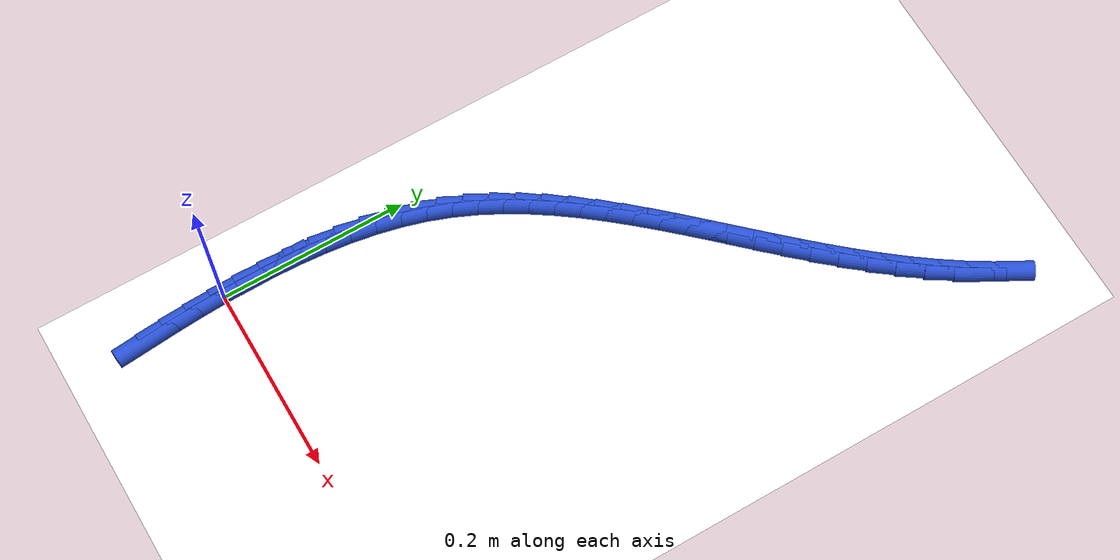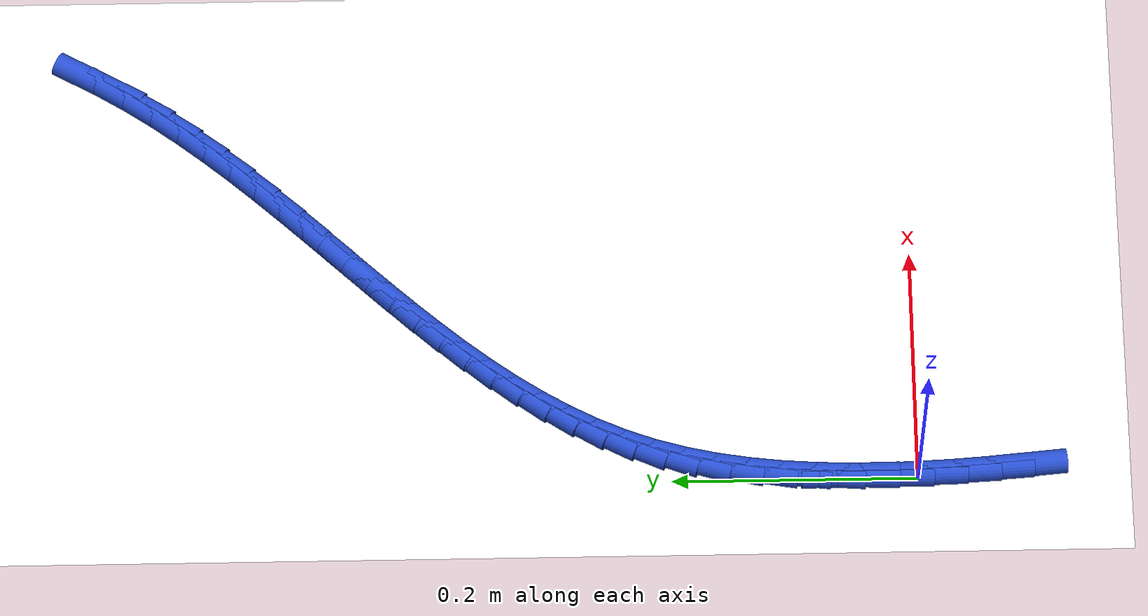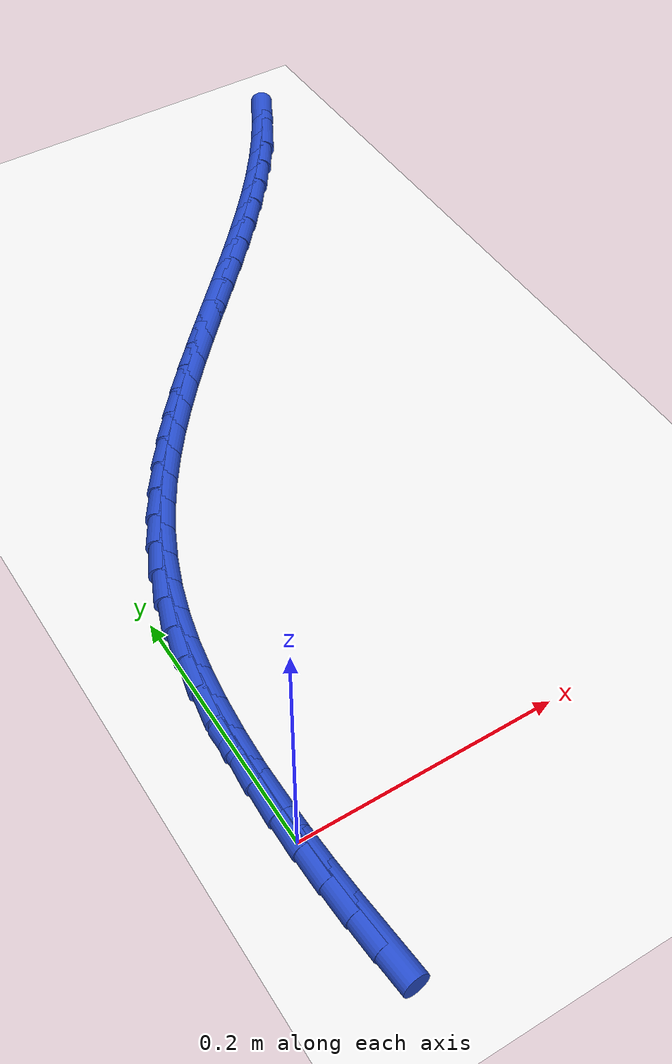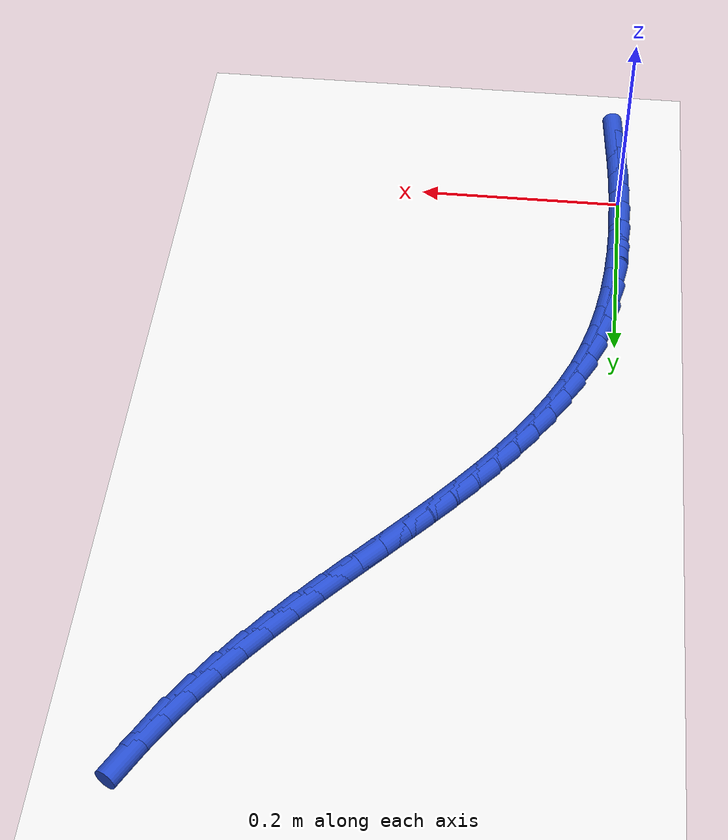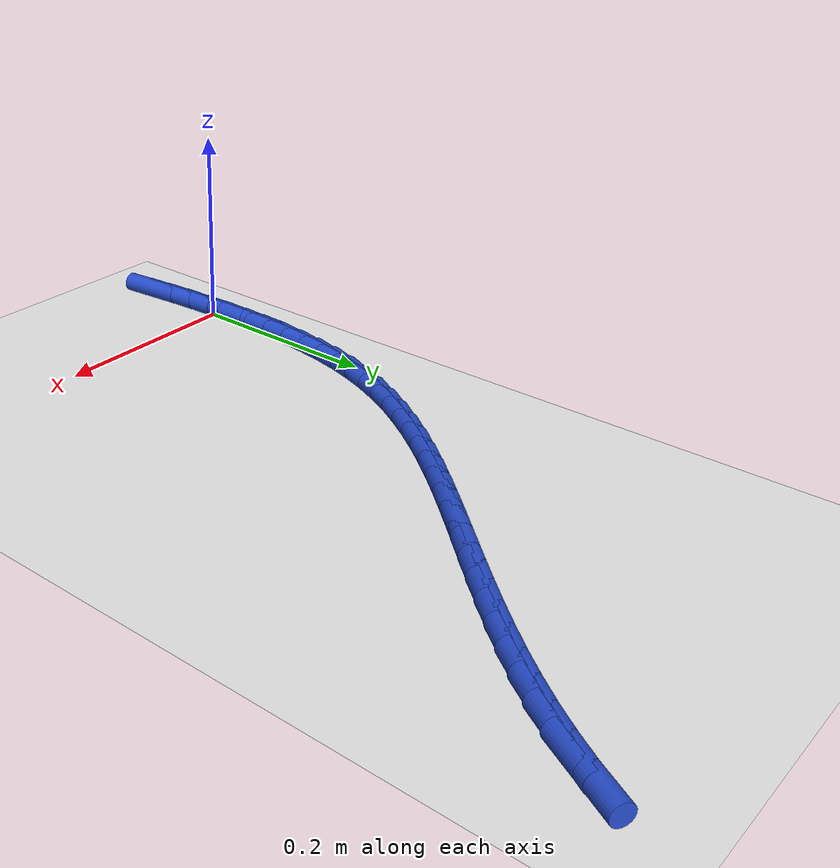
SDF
<sdf version="1.6">
 <world name="default">
  <model name="ground_plane">
   <static>1</static>
   <link name="link">
    <collision name="collision">
     <geometry><plane><normal>0 0 1</normal><size>100 100</size></plane></geometry>
     <surface><friction><ode><mu>100</mu><mu2>50</mu2></ode></friction></surface>
    </collision>
    <visual name="visual">
     <cast_shadows>0</cast_shadows>
     <geometry><plane><normal>0 0 1</normal><size>100 100</size></plane></geometry>
     <material>
      <script><uri>file://media/materials/scripts/gazebo.material</uri><name>Gazebo/WhiteGlow</name></script>
     </material>
    </visual>
   </link>
  </model>
  <model name="line">
   <link name="link_0">
    <pose>1.0842021724855044e-17 2.0816681711721685e-17 0.01 0 1.57 -1.5472267662601276</pose>
    <collision name="collision">
     <geometry><cylinder><radius>0.01</radius><length>0.08</length></cylinder></geometry>
    </collision>
    <visual name="visual">
     <material>
      <script><name>Gazebo/Blue</name><uri>file://media/materials/scripts/gazebo.material</uri></script>
     </material>
     <geometry><cylinder><radius>0.01</radius><length>0.08</length></cylinder></geometry>
    </visual>
   </link>
   <link name="link_1">
    <pose>-0.0006464769076090113 0.02742338751018824 0.01 0 1.57 1.5667101648497685</pose>
    <collision name="collision">
     <geometry><cylinder><radius>0.01</radius><length>0.08</length></cylinder></geometry>
    </collision>
    <visual name="visual">
     <material>
      <script><name>Gazebo/Blue</name><uri>file://media/materials/scripts/gazebo.material</uri></script>
     </material>
     <geometry><cylinder><radius>0.01</radius><length>0.08</length></cylinder></geometry>
    </visual>
   </link>
   <link name="link_2">
    <pose>-0.0005337902747085362 0.055000856843833955 0.01 0 1.57 1.5344572373062468</pose>
    <collision name="collision">
     <geometry><cylinder><radius>0.01</radius><length>0.08</length></cylinder></geometry>
    </collision>
    <visual name="visual">
     <material>
      <script><name>Gazebo/Blue</name><uri>file://media/materials/scripts/gazebo.material</uri></script>
     </material>
     <geometry><cylinder><radius>0.01</radius><length>0.08</length></cylinder></geometry>
    </visual>
   </link>
   <link name="link_3">
    <pose>0.00046877436438513354 0.08257786300912566 0.01 0 1.57 1.497151139455644</pose>
    <collision name="collision">
     <geometry><cylinder><radius>0.01</radius><length>0.08</length></cylinder></geometry>
    </collision>
    <visual name="visual">
     <material>
      <script><name>Gazebo/Blue</name><uri>file://media/materials/scripts/gazebo.material</uri></script>
     </material>
     <geometry><cylinder><radius>0.01</radius><length>0.08</length></cylinder></geometry>
    </visual>
   </link>
   <link name="link_4">
    <pose>0.0024919314753556903 0.10999986101425177 0.01 0 1.57 1.4542418787284923</pose>
    <collision name="collision">
     <geometry><cylinder><radius>0.01</radius><length>0.08</length></cylinder></geometry>
    </collision>
    <visual name="visual">
     <material>
      <script><name>Gazebo/Blue</name><uri>file://media/materials/scripts/gazebo.material</uri></script>
     </material>
     <geometry><cylinder><radius>0.01</radius><length>0.08</length></cylinder></geometry>
    </visual>
   </link>
   <link name="link_5">
    <pose>0.005666395523886836 0.13711230586740084 0.01 0 1.57 1.4050965822391075</pose>
    <collision name="collision">
     <geometry><cylinder><radius>0.01</radius><length>0.08</length></cylinder></geometry>
    </collision>
    <visual name="visual">
     <material>
      <script><name>Gazebo/Blue</name><uri>file://media/materials/scripts/gazebo.material</uri></script>
     </material>
     <geometry><cylinder><radius>0.01</radius><length>0.08</length></cylinder></geometry>
    </visual>
   </link>
   <link name="link_6">
    <pose>0.010122880975662265 0.16376065257676137 0.01 0 1.57 1.3490234607499503</pose>
    <collision name="collision">
     <geometry><cylinder><radius>0.01</radius><length>0.08</length></cylinder></geometry>
    </collision>
    <visual name="visual">
     <material>
      <script><name>Gazebo/Blue</name><uri>file://media/materials/scripts/gazebo.material</uri></script>
     </material>
     <geometry><cylinder><radius>0.01</radius><length>0.08</length></cylinder></geometry>
    </visual>
   </link>
   <link name="link_7">
    <pose>0.01599210229636567 0.18979035615052176 0.01 0 1.57 1.2853176665392432</pose>
    <collision name="collision">
     <geometry><cylinder><radius>0.01</radius><length>0.08</length></cylinder></geometry>
    </collision>
    <visual name="visual">
     <material>
      <script><name>Gazebo/Blue</name><uri>file://media/materials/scripts/gazebo.material</uri></script>
     </material>
     <geometry><cylinder><radius>0.01</radius><length>0.08</length></cylinder></geometry>
    </visual>
   </link>
   <link name="link_8">
    <pose>0.02340477395040744 0.21504687159804953 0.01 0 1.57 1.2154745744464812</pose>
    <collision name="collision">
     <geometry><cylinder><radius>0.01</radius><length>0.08</length></cylinder></geometry>
    </collision>
    <visual name="visual">
     <material>
      <script><name>Gazebo/Blue</name><uri>file://media/materials/scripts/gazebo.material</uri></script>
     </material>
     <geometry><cylinder><radius>0.01</radius><length>0.08</length></cylinder></geometry>
    </visual>
   </link>
   <link name="link_9">
    <pose>0.03244760337115915 0.23941640173348774 0.01 0 1.57 1.1480598412882907</pose>
    <collision name="collision">
     <geometry><cylinder><radius>0.01</radius><length>0.08</length></cylinder></geometry>
    </collision>
    <visual name="visual">
     <material>
      <script><name>Gazebo/Blue</name><uri>file://media/materials/scripts/gazebo.material</uri></script>
     </material>
     <geometry><cylinder><radius>0.01</radius><length>0.08</length></cylinder></geometry>
    </visual>
   </link>
   <link name="link_10">
    <pose>0.04303288856855014 0.2629466417727541 0.01 0 1.57 1.0860408025987376</pose>
    <collision name="collision">
     <geometry><cylinder><radius>0.01</radius><length>0.08</length></cylinder></geometry>
    </collision>
    <visual name="visual">
     <material>
      <script><name>Gazebo/Blue</name><uri>file://media/materials/scripts/gazebo.material</uri></script>
     </material>
     <geometry><cylinder><radius>0.01</radius><length>0.08</length></cylinder></geometry>
    </visual>
   </link>
   <link name="link_11">
    <pose>0.055029726157448035 0.28572528876716546 0.01 0 1.57 1.0300897375059677</pose>
    <collision name="collision">
     <geometry><cylinder><radius>0.01</radius><length>0.08</length></cylinder></geometry>
    </collision>
    <visual name="visual">
     <material>
      <script><name>Gazebo/Blue</name><uri>file://media/materials/scripts/gazebo.material</uri></script>
     </material>
     <geometry><cylinder><radius>0.01</radius><length>0.08</length></cylinder></geometry>
    </visual>
   </link>
   <link name="link_12">
    <pose>0.06830721275272042 0.3078400397680383 0.01 0 1.57 0.9806048718350402</pose>
    <collision name="collision">
     <geometry><cylinder><radius>0.01</radius><length>0.08</length></cylinder></geometry>
    </collision>
    <visual name="visual">
     <material>
      <script><name>Gazebo/Blue</name><uri>file://media/materials/scripts/gazebo.material</uri></script>
     </material>
     <geometry><cylinder><radius>0.01</radius><length>0.08</length></cylinder></geometry>
    </visual>
   </link>
   <link name="link_13">
    <pose>0.08273444496923486 0.3293785918266895 0.01 0 1.57 0.9377580595909303</pose>
    <collision name="collision">
     <geometry><cylinder><radius>0.01</radius><length>0.08</length></cylinder></geometry>
    </collision>
    <visual name="visual">
     <material>
      <script><name>Gazebo/Blue</name><uri>file://media/materials/scripts/gazebo.material</uri></script>
     </material>
     <geometry><cylinder><radius>0.01</radius><length>0.08</length></cylinder></geometry>
    </visual>
   </link>
   <link name="link_14">
    <pose>0.09818051942185899 0.3504286419944355 0.01 0 1.57 0.9015536223161307</pose>
    <collision name="collision">
     <geometry><cylinder><radius>0.01</radius><length>0.08</length></cylinder></geometry>
    </collision>
    <visual name="visual">
     <material>
      <script><name>Gazebo/Blue</name><uri>file://media/materials/scripts/gazebo.material</uri></script>
     </material>
     <geometry><cylinder><radius>0.01</radius><length>0.08</length></cylinder></geometry>
    </visual>
   </link>
   <link name="link_15">
    <pose>0.1145145327254604 0.3710778873225931 0.01 0 1.57 0.871885923243283</pose>
    <collision name="collision">
     <geometry><cylinder><radius>0.01</radius><length>0.08</length></cylinder></geometry>
    </collision>
    <visual name="visual">
     <material>
      <script><name>Gazebo/Blue</name><uri>file://media/materials/scripts/gazebo.material</uri></script>
     </material>
     <geometry><cylinder><radius>0.01</radius><length>0.08</length></cylinder></geometry>
    </visual>
   </link>
   <link name="link_16">
    <pose>0.13160558149490664 0.391414024862479 0.01 0 1.57 0.8485885280070876</pose>
    <collision name="collision">
     <geometry><cylinder><radius>0.01</radius><length>0.08</length></cylinder></geometry>
    </collision>
    <visual name="visual">
     <material>
      <script><name>Gazebo/Blue</name><uri>file://media/materials/scripts/gazebo.material</uri></script>
     </material>
     <geometry><cylinder><radius>0.01</radius><length>0.08</length></cylinder></geometry>
    </visual>
   </link>
   <link name="link_17">
    <pose>0.14932276234506534 0.4115247516654098 0.01 0 1.57 0.8314722266942071</pose>
    <collision name="collision">
     <geometry><cylinder><radius>0.01</radius><length>0.08</length></cylinder></geometry>
    </collision>
    <visual name="visual">
     <material>
      <script><name>Gazebo/Blue</name><uri>file://media/materials/scripts/gazebo.material</uri></script>
     </material>
     <geometry><cylinder><radius>0.01</radius><length>0.08</length></cylinder></geometry>
    </visual>
   </link>
   <link name="link_18">
    <pose>0.1675351718908041 0.43149776478270235 0.01 0 1.57 0.8203519997227349</pose>
    <collision name="collision">
     <geometry><cylinder><radius>0.01</radius><length>0.08</length></cylinder></geometry>
    </collision>
    <visual name="visual">
     <material>
      <script><name>Gazebo/Blue</name><uri>file://media/materials/scripts/gazebo.material</uri></script>
     </material>
     <geometry><cylinder><radius>0.01</radius><length>0.08</length></cylinder></geometry>
    </visual>
   </link>
   <link name="link_19">
    <pose>0.18611190674699052 0.45142076126567304 0.01 0 1.57 0.815064344698585</pose>
    <collision name="collision">
     <geometry><cylinder><radius>0.01</radius><length>0.08</length></cylinder></geometry>
    </collision>
    <visual name="visual">
     <material>
      <script><name>Gazebo/Blue</name><uri>file://media/materials/scripts/gazebo.material</uri></script>
     </material>
     <geometry><cylinder><radius>0.01</radius><length>0.08</length></cylinder></geometry>
    </visual>
   </link>
   <link name="link_20">
    <pose>0.20492206352849224 0.47138143816563893 0.01 0 1.57 0.8154767114710165</pose>
    <collision name="collision">
     <geometry><cylinder><radius>0.01</radius><length>0.08</length></cylinder></geometry>
    </collision>
    <visual name="visual">
     <material>
      <script><name>Gazebo/Blue</name><uri>file://media/materials/scripts/gazebo.material</uri></script>
     </material>
     <geometry><cylinder><radius>0.01</radius><length>0.08</length></cylinder></geometry>
    </visual>
   </link>
   <link name="link_21">
    <pose>0.22383473885017674 0.4914674925339162 0.01 0 1.57 0.8214905726017478</pose>
    <collision name="collision">
     <geometry><cylinder><radius>0.01</radius><length>0.08</length></cylinder></geometry>
    </collision>
    <visual name="visual">
     <material>
      <script><name>Gazebo/Blue</name><uri>file://media/materials/scripts/gazebo.material</uri></script>
     </material>
     <geometry><cylinder><radius>0.01</radius><length>0.08</length></cylinder></geometry>
    </visual>
   </link>
   <link name="link_22">
    <pose>0.24271902932691167 0.511766621421822 0.01 0 1.57 0.8330392102226798</pose>
    <collision name="collision">
     <geometry><cylinder><radius>0.01</radius><length>0.08</length></cylinder></geometry>
    </collision>
    <visual name="visual">
     <material>
      <script><name>Gazebo/Blue</name><uri>file://media/materials/scripts/gazebo.material</uri></script>
     </material>
     <geometry><cylinder><radius>0.01</radius><length>0.08</length></cylinder></geometry>
    </visual>
   </link>
   <link name="link_23">
    <pose>0.26144403157356455 0.5323665218806728 0.01 0 1.57 0.8500808257828767</pose>
    <collision name="collision">
     <geometry><cylinder><radius>0.01</radius><length>0.08</length></cylinder></geometry>
    </collision>
    <visual name="visual">
     <material>
      <script><name>Gazebo/Blue</name><uri>file://media/materials/scripts/gazebo.material</uri></script>
     </material>
     <geometry><cylinder><radius>0.01</radius><length>0.08</length></cylinder></geometry>
    </visual>
   </link>
   <link name="link_24">
    <pose>0.27987884220500314 0.5533548909617851 0.01 0 1.57 0.8725871944044229</pose>
    <collision name="collision">
     <geometry><cylinder><radius>0.01</radius><length>0.08</length></cylinder></geometry>
    </collision>
    <visual name="visual">
     <material>
      <script><name>Gazebo/Blue</name><uri>file://media/materials/scripts/gazebo.material</uri></script>
     </material>
     <geometry><cylinder><radius>0.01</radius><length>0.08</length></cylinder></geometry>
    </visual>
   </link>
   <link name="link_25">
    <pose>0.2978925578360949 0.5748194257164759 0.01 0 1.57 0.9005278743627724</pose>
    <collision name="collision">
     <geometry><cylinder><radius>0.01</radius><length>0.08</length></cylinder></geometry>
    </collision>
    <visual name="visual">
     <material>
      <script><name>Gazebo/Blue</name><uri>file://media/materials/scripts/gazebo.material</uri></script>
     </material>
     <geometry><cylinder><radius>0.01</radius><length>0.08</length></cylinder></geometry>
    </visual>
   </link>
   <link name="link_26">
    <pose>0.31535427508170755 0.5968478231960617 0.01 0 1.57 0.9338500247431556</pose>
    <collision name="collision">
     <geometry><cylinder><radius>0.01</radius><length>0.08</length></cylinder></geometry>
    </collision>
    <visual name="visual">
     <material>
      <script><name>Gazebo/Blue</name><uri>file://media/materials/scripts/gazebo.material</uri></script>
     </material>
     <geometry><cylinder><radius>0.01</radius><length>0.08</length></cylinder></geometry>
    </visual>
   </link>
   <link name="link_27">
    <pose>0.3321330905567085 0.6195277804518591 0.01 0 1.57 0.9724542643620521</pose>
    <collision name="collision">
     <geometry><cylinder><radius>0.01</radius><length>0.08</length></cylinder></geometry>
    </collision>
    <visual name="visual">
     <material>
      <script><name>Gazebo/Blue</name><uri>file://media/materials/scripts/gazebo.material</uri></script>
     </material>
     <geometry><cylinder><radius>0.01</radius><length>0.08</length></cylinder></geometry>
    </visual>
   </link>
   <link name="link_28">
    <pose>0.34809810087596554 0.6429469945351851 0.01 0 1.57 1.0161677870229466</pose>
    <collision name="collision">
     <geometry><cylinder><radius>0.01</radius><length>0.08</length></cylinder></geometry>
    </collision>
    <visual name="visual">
     <material>
      <script><name>Gazebo/Blue</name><uri>file://media/materials/scripts/gazebo.material</uri></script>
     </material>
     <geometry><cylinder><radius>0.01</radius><length>0.08</length></cylinder></geometry>
    </visual>
   </link>
   <link name="link_29">
    <pose>0.36311840265434614 0.667193162497356 0.01 0 1.57 1.0647171182484148</pose>
    <collision name="collision">
     <geometry><cylinder><radius>0.01</radius><length>0.08</length></cylinder></geometry>
    </collision>
    <visual name="visual">
     <material>
      <script><name>Gazebo/Blue</name><uri>file://media/materials/scripts/gazebo.material</uri></script>
     </material>
     <geometry><cylinder><radius>0.01</radius><length>0.08</length></cylinder></geometry>
    </visual>
   </link>
   <link name="link_287">
    <pose>0.0055340853703327395 -0.08084223827771009 0.01 0 1.57 -1.4819760103247435</pose>
    <collision name="collision">
     <geometry><cylinder><radius>0.01</radius><length>0.08</length></cylinder></geometry>
    </collision>
    <visual name="visual">
     <material>
      <script><name>Gazebo/Blue</name><uri>file://media/materials/scripts/gazebo.material</uri></script>
     </material>
     <geometry><cylinder><radius>0.01</radius><length>0.08</length></cylinder></geometry>
    </visual>
   </link>
   <link name="link_288">
    <pose>0.003150347481059376 -0.054075095243796764 0.01 0 1.57 -1.5017215555725156</pose>
    <collision name="collision">
     <geometry><cylinder><radius>0.01</radius><length>0.08</length></cylinder></geometry>
    </collision>
    <visual name="visual">
     <material>
      <script><name>Gazebo/Blue</name><uri>file://media/materials/scripts/gazebo.material</uri></script>
     </material>
     <geometry><cylinder><radius>0.01</radius><length>0.08</length></cylinder></geometry>
    </visual>
   </link>
   <link name="link_289">
    <pose>0.0012877710958158024 -0.027153353902549266 0.01 0 1.57 -1.5234059782123615</pose>
    <collision name="collision">
     <geometry><cylinder><radius>0.01</radius><length>0.08</length></cylinder></geometry>
    </collision>
    <visual name="visual">
     <material>
      <script><name>Gazebo/Blue</name><uri>file://media/materials/scripts/gazebo.material</uri></script>
     </material>
     <geometry><cylinder><radius>0.01</radius><length>0.08</length></cylinder></geometry>
    </visual>
   </link>
   <link name="link_290">
    <pose>2.6454533008646308e-17 -2.0122792321330962e-16 0.01 0 1.57 -1.5467923996332211</pose>
    <collision name="collision">
     <geometry><cylinder><radius>0.01</radius><length>0.08</length></cylinder></geometry>
    </collision>
    <visual name="visual">
     <material>
      <script><name>Gazebo/Blue</name><uri>file://media/materials/scripts/gazebo.material</uri></script>
     </material>
     <geometry><cylinder><radius>0.01</radius><length>0.08</length></cylinder></geometry>
    </visual>
   </link>
   <link name="link_291">
    <pose>-0.0006593220209899391 0.027461980717816973 0.01 0 1.57 1.5699786327622463</pose>
    <collision name="collision">
     <geometry><cylinder><radius>0.01</radius><length>0.08</length></cylinder></geometry>
    </collision>
    <visual name="visual">
     <material>
      <script><name>Gazebo/Blue</name><uri>file://media/materials/scripts/gazebo.material</uri></script>
     </material>
     <geometry><cylinder><radius>0.01</radius><length>0.08</length></cylinder></geometry>
    </visual>
   </link>
   <link name="link_292">
    <pose>-0.0006365511817561201 0.05530960250487241 0.01 0 1.57 -1.5592879620526745</pose>
    <collision name="collision">
     <geometry><cylinder><radius>0.01</radius><length>0.08</length></cylinder></geometry>
    </collision>
    <visual name="visual">
     <material>
      <script><name>Gazebo/Blue</name><uri>file://media/materials/scripts/gazebo.material</uri></script>
     </material>
     <geometry><cylinder><radius>0.01</radius><length>0.08</length></cylinder></geometry>
    </visual>
   </link>
  </model>
 </world>
</sdf>
